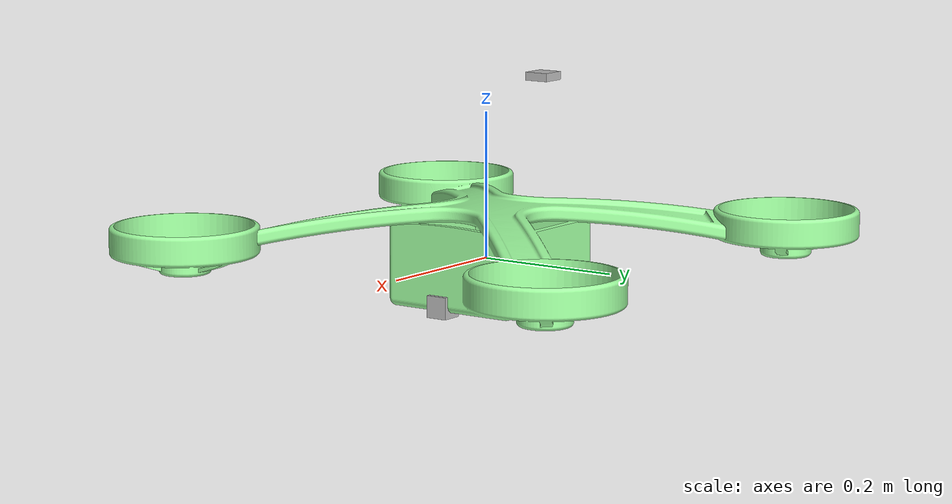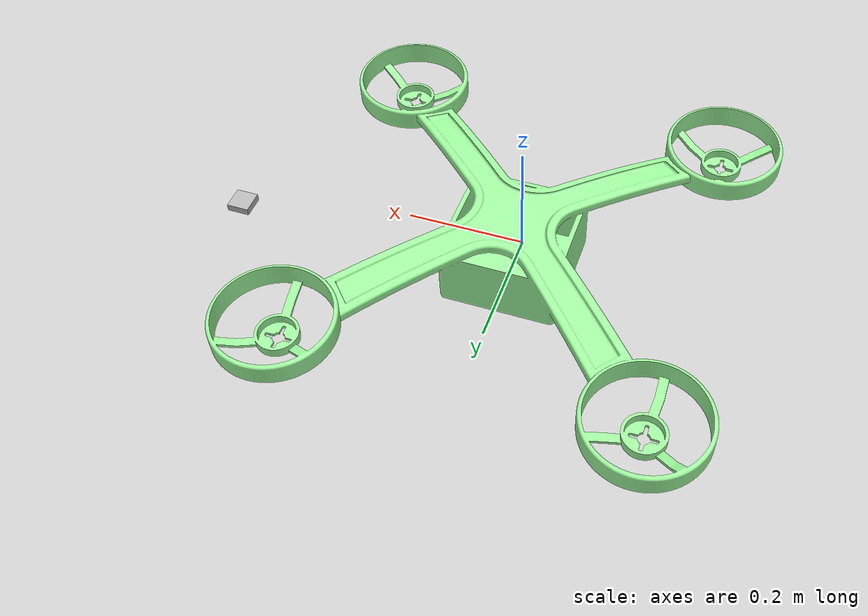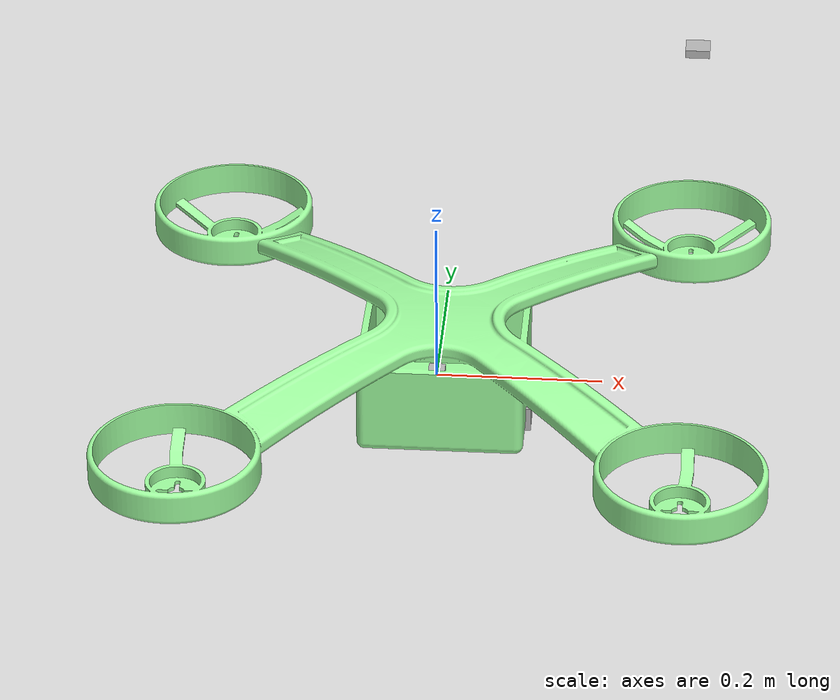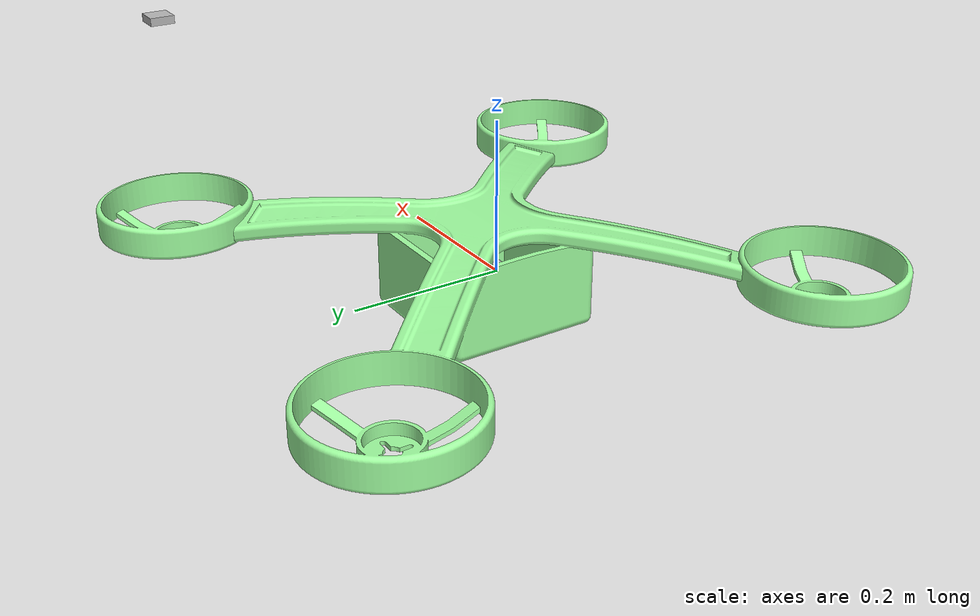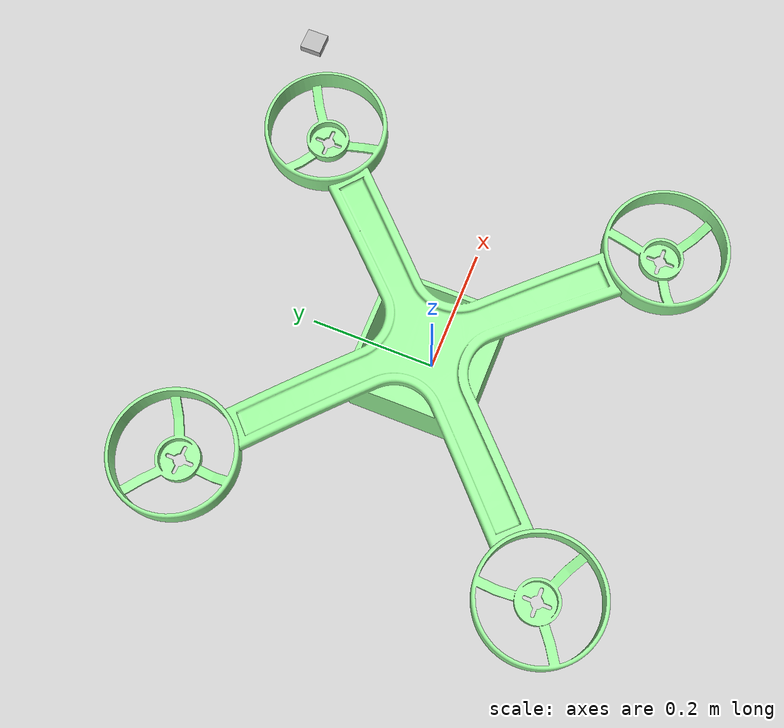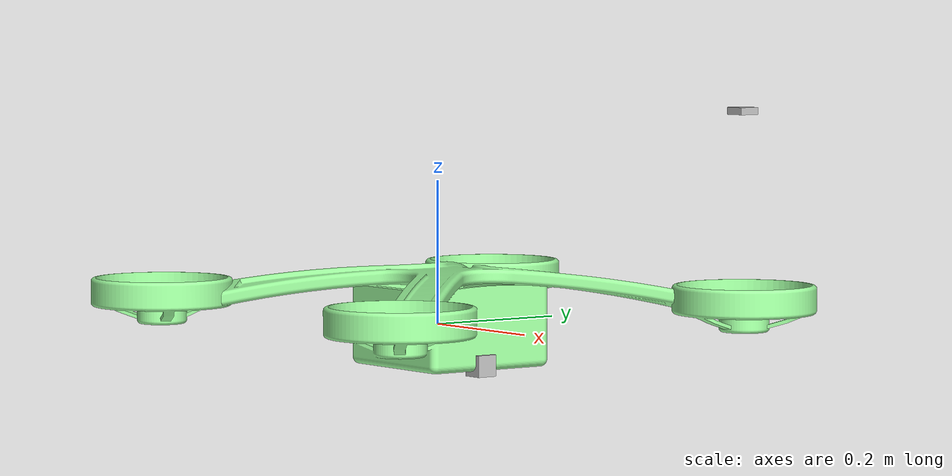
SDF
<sdf version='1.9'>
  <model name='assembly_1'>
    <link name='base_link'>
      <inertial>
        <pose>0.0074766355140186919 0.00280373831775701 0.00046728971962616781 0 0 0</pose>
        <mass>1.0700000000000001</mass>
        <inertia>
          <ixx>0.1020363551401869</ixx>
          <ixy>-0.0008775700934579439</ixy>
          <ixz>-0.00064626168224299059</ixz>
          <iyy>0.10248495327102811</iyy>
          <iyz>-0.00089859813084112148</iyz>
          <izz>0.10235177570093459</izz>
        </inertia>
      </inertial>
      <collision name='root_collision'>
        <pose>0.00908956 0.0132281 -0.0575308 0 0 0</pose>
        <geometry>
          <mesh>
            <scale>1 1 1</scale>
            <uri>model://assembly_1/meshes/Default.stl</uri>
          </mesh>
        </geometry>
      </collision>
      <collision name='root_fixed_joint_lump__camera_link_collision_1'>
        <pose>0. 0 -0.050000000000000003 0 1.5707963267948966 0</pose>
        <geometry>
          <box>
            <size>0.029999999999999999 0.029999999999999999 0.029999999999999999</size>
          </box>
        </geometry>
        <surface>
          <contact>
            <ode/>
          </contact>
          <friction>
            <ode/>
          </friction>
        </surface>
      </collision>
      <visual name='root_visual'>
        <pose>0.00908956 0.0132281 -0.0575308 0 0 0</pose>
        <geometry>
        <mesh>
          <scale>1 1 1</scale>
          <uri>model://assembly_1/meshes/Default.stl</uri>
       </mesh>
        </geometry>
        <material>
          <diffuse>0.627451241 1 0.627451241 1</diffuse>
          <ambient>0.627451241 1 0.627451241 1</ambient>
        </material>
      </visual>
      <visual name='root_fixed_joint_lump__camera_link_visual_1'>
        <pose>0.10000000000000001 0 -0.050000000000000003 0 1.5707963267948966 0</pose>
        <geometry>
          <box>
            <size>0.029999999999999999 0.029999999999999999 0.029999999999999999</size>
          </box>
        </geometry>
      </visual>
      <visual name='root_fixed_joint_lump__gps_visual_2'>
        <pose>0.29999999999999999 0.29999999999999999 0.29999999999999999 0 0 0</pose>
        <geometry>
          <box>
            <size>0.029999999999999999 0.029999999999999999 0.01</size>
          </box>
        </geometry>
      </visual>
      <visual name='root_fixed_joint_lump__imu_link_visual_3'>
        <pose>0 0 0 0 0 0</pose>
        <geometry>
          <box>
            <size>0.02 0.02 0.02</size>
          </box>
        </geometry>
      </visual>
      <sensor name='downward_camera' type='camera'>
        <update_rate>30</update_rate>
        <topic>camera/image_raw</topic>
        <camera name='intel_cam'>
          <horizontal_fov>1.3962634</horizontal_fov>
          <image>
            <width>640</width>
            <height>480</height>
            <format>R8G8B8</format>
          </image>
          <clip>
            <near>0.02</near>
            <far>300</far>
          </clip>
        </camera>

        <pose>0.10000000000000001 0 -0.050000000000000003 3.1415926535897931 1.5707926536359933 3.1415926535897931</pose>
      </sensor>
      <sensor name='gps_sensor' type='navsat'>
        <always_on>true</always_on>
        <update_rate>10</update_rate>
        <pose>0.29999999999999999 0.29999999999999999 0.29999999999999999 0 0 0</pose>
        <gps/>
      </sensor>
      <sensor name='imu_sensor' type='imu'>
        <always_on>true</always_on>
        <update_rate>100</update_rate>
        <visualize>true</visualize>
        <pose>0 0 0 0 0 0</pose>
        <imu/>
      </sensor>
    </link>
    <plugin name='gz::sim::systems::NavSat' filename='gz-sim-navsat-system'/>
    <plugin name='gz::sim::systems::Sensors' filename='gz-sim-sensors-system'/>
    <plugin name='gz::sim::systems::Imu' filename='gz-sim-imu-system'/>
     <!-- port and hostname -->
    <plugin
      filename="libgz_mavlink_pin_bridge"
      name="gz::sim::systems::MavlinkPinBridge">

      <!-- Network target configuration for the Autopilot -->
      <fcu_addr>127.0.0.1</fcu_addr>
      <fcu_udp_port>14560</fcu_udp_port>
      <connection_type>udp</connection_type>

      <!-- Mapping sensor topics to the bridge -->
      <imu_topic>/world/default/model/assembly_1/link/base_link/sensor/imu_sensor/imu</imu_topic>
      <gps_topic>/world/default/model/assembly_1/link/base_link/sensor/gps_sensor/navsat</gps_topic>

      <!-- Actuator controls coming from the autopilot -->
      <actuator_sub_topic>/model/assembly_1/command/motor_speed</actuator_sub_topic>
    </plugin>

    <frame name='downward_camera_joint' attached_to='base_link'>
      <pose>0.10000000000000001 0 -0.050000000000000003 3.1415926535897931 1.5707926536359933 3.1415926535897931</pose>
    </frame>
    <frame name='camera_link' attached_to='downward_camera_joint'>
      <pose>0 0 0 0 0 0</pose>
    </frame>
    <frame name='gps_joint' attached_to='base_link'>
      <pose>0.29999999999999999 0.29999999999999999 0.29999999999999999 0 0 0</pose>
    </frame>
    <frame name='gps' attached_to='gps_joint'>
      <pose>0 0 0 0 0 0</pose>
    </frame>
    <frame name='imu_joint' attached_to='base_link'>
      <pose>0 0 0 0 0 0</pose>
    </frame>
    <frame name='imu_link' attached_to='imu_joint'>
      <pose>0 0 0 0 0 0</pose>
    </frame>
  </model>
</sdf>
